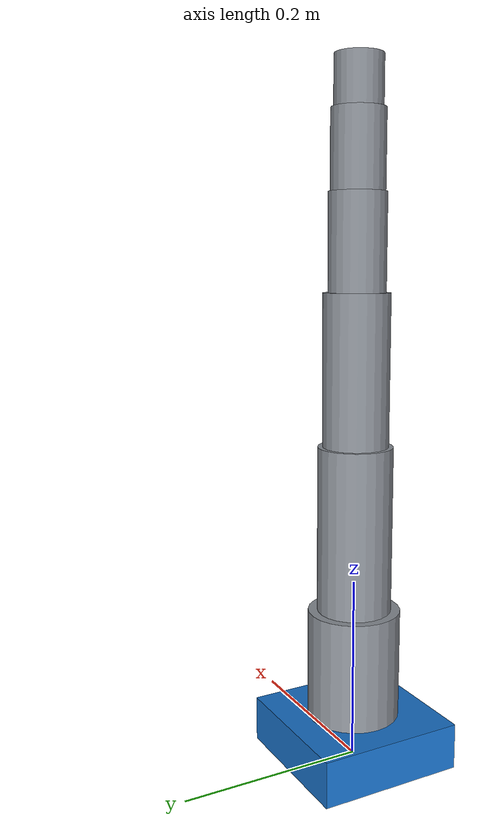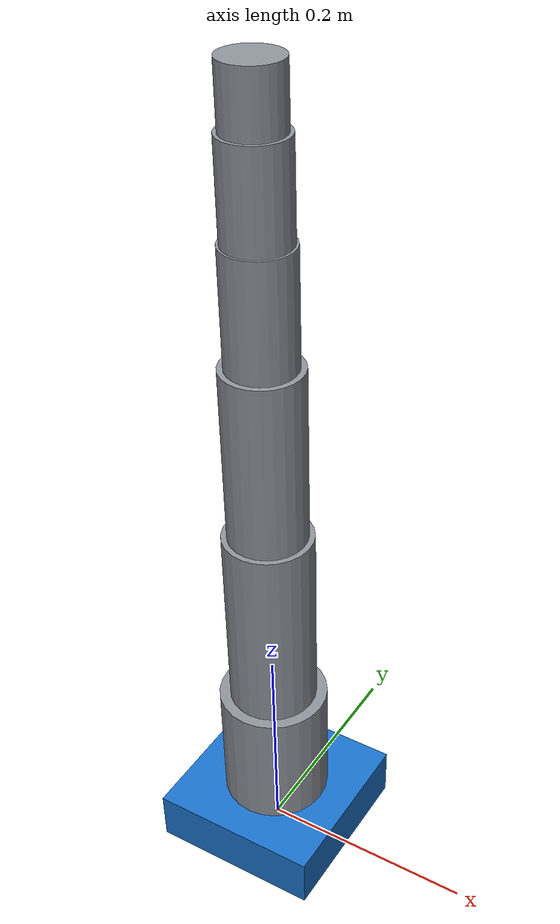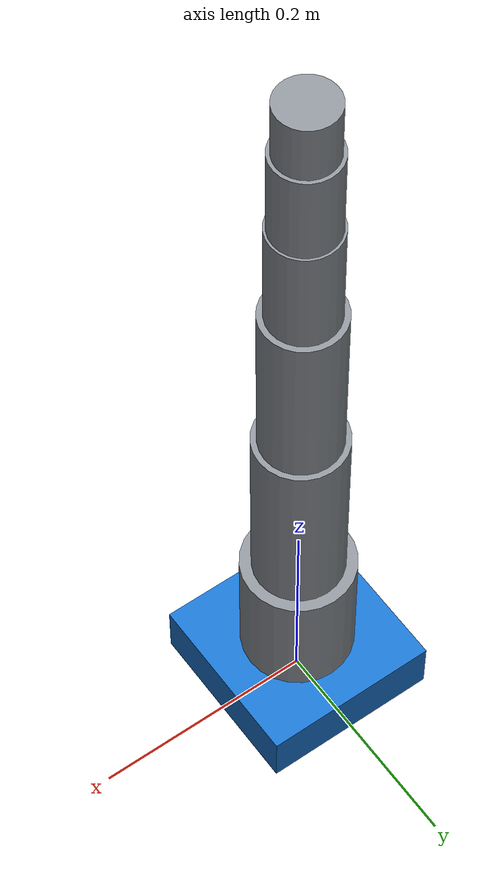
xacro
<?xml version="1.0"?>
<robot name="arctos" xmlns:xacro="http://www.ros.org/wiki/xacro">

  <xacro:arg name="prefix" default=""/>
  <xacro:arg name="use_mock_components" default="true"/>
  <xacro:arg name="can_backend" default="mock"/>
  <xacro:arg name="config_path" default=""/>
  <xacro:arg name="joints_file"
             default="$(find arctos_description)/config/arctos_joints.yaml"/>

  <xacro:include filename="$(find arctos_description)/urdf/arctos_macro.xacro"/>
  <xacro:include filename="$(find arctos_description)/urdf/arctos.ros2_control.xacro"/>

  <!-- Fixed world anchor so MoveIt has a stable planning frame. -->
  <link name="world"/>
  <joint name="world_to_base" type="fixed">
    <parent link="world"/>
    <child link="$(arg prefix)base_link"/>
    <origin xyz="0 0 0" rpy="0 0 0"/>
  </joint>

  <xacro:arctos_arm prefix="$(arg prefix)" joints_file="$(arg joints_file)"/>

  <xacro:arctos_ros2_control
    prefix="$(arg prefix)"
    joints_file="$(arg joints_file)"
    use_mock_components="$(arg use_mock_components)"
    can_backend="$(arg can_backend)"
    config_path="$(arg config_path)"/>

</robot>

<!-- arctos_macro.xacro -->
<robot xmlns:xacro="http://www.ros.org/wiki/xacro">

  <xacro:macro name="arctos_arm" params="prefix joints_file">

    <!-- Load the generated joint spec (radian limits + velocities). -->
    <xacro:property name="jspec" value="${xacro.load_yaml(joints_file)}"/>
    <xacro:property name="joints" value="${jspec['joints']}"/>

    <material name="arctos_grey">
      <color rgba="0.55 0.57 0.60 1.0"/>
    </material>
    <material name="arctos_accent">
      <color rgba="0.10 0.45 0.80 1.0"/>
    </material>

    <!-- A primitive cylindrical link of given length along +Z. -->
    <xacro:macro name="seg_link" params="name length radius:=0.04 material:=arctos_grey">
      <link name="${name}">
        <visual>
          <origin xyz="0 0 ${length/2}" rpy="0 0 0"/>
          <geometry><cylinder length="${length}" radius="${radius}"/></geometry>
          <material name="${material}"/>
        </visual>
        <collision>
          <origin xyz="0 0 ${length/2}" rpy="0 0 0"/>
          <geometry><cylinder length="${length}" radius="${radius}"/></geometry>
        </collision>
        <inertial>
          <origin xyz="0 0 ${length/2}" rpy="0 0 0"/>
          <mass value="0.5"/>
          <inertia ixx="0.001" ixy="0" ixz="0" iyy="0.001" iyz="0" izz="0.001"/>
        </inertial>
      </link>
    </xacro:macro>

    <!-- A revolute joint whose limits are read from the generated spec. -->
    <xacro:macro name="rev_joint" params="name parent child axis_xyz origin_xyz">
      <joint name="${prefix}${name}" type="revolute">
        <parent link="${parent}"/>
        <child link="${child}"/>
        <origin xyz="${origin_xyz}" rpy="0 0 0"/>
        <axis xyz="${axis_xyz}"/>
        <limit
          lower="${joints[name]['lower']}"
          upper="${joints[name]['upper']}"
          velocity="${joints[name]['velocity']}"
          effort="${joints[name]['effort']}"/>
      </joint>
    </xacro:macro>

    <!-- World-anchored base. -->
    <link name="${prefix}base_link">
      <visual>
        <origin xyz="0 0 0.025" rpy="0 0 0"/>
        <geometry><box size="0.16 0.16 0.05"/></geometry>
        <material name="arctos_accent"/>
      </visual>
      <collision>
        <origin xyz="0 0 0.025" rpy="0 0 0"/>
        <geometry><box size="0.16 0.16 0.05"/></geometry>
      </collision>
      <inertial>
        <mass value="1.0"/>
        <inertia ixx="0.005" ixy="0" ixz="0" iyy="0.005" iyz="0" izz="0.005"/>
      </inertial>
    </link>

    <!-- Links (approximate lengths, metres). -->
    <xacro:seg_link name="${prefix}link1" length="0.12" radius="0.05"/>
    <xacro:seg_link name="${prefix}link2" length="0.18" radius="0.04"/>
    <xacro:seg_link name="${prefix}link3" length="0.16" radius="0.035"/>
    <xacro:seg_link name="${prefix}link4" length="0.10" radius="0.03"/>
    <xacro:seg_link name="${prefix}link5" length="0.08" radius="0.028"/>
    <xacro:seg_link name="${prefix}link6" length="0.05" radius="0.025"/>

    <!-- Tool flange. -->
    <link name="${prefix}tool0"/>

    <!-- Serial chain. Axes: J1 base yaw (Z), J2/J3 pitch (Y),
         J4 roll (Z), J5 pitch (Y), J6 roll (Z). -->
    <xacro:rev_joint name="J1" parent="${prefix}base_link" child="${prefix}link1"
                     axis_xyz="0 0 1" origin_xyz="0 0 0.05"/>
    <xacro:rev_joint name="J2" parent="${prefix}link1" child="${prefix}link2"
                     axis_xyz="0 1 0" origin_xyz="0 0 0.12"/>
    <xacro:rev_joint name="J3" parent="${prefix}link2" child="${prefix}link3"
                     axis_xyz="0 1 0" origin_xyz="0 0 0.18"/>
    <xacro:rev_joint name="J4" parent="${prefix}link3" child="${prefix}link4"
                     axis_xyz="0 0 1" origin_xyz="0 0 0.16"/>
    <xacro:rev_joint name="J5" parent="${prefix}link4" child="${prefix}link5"
                     axis_xyz="0 1 0" origin_xyz="0 0 0.10"/>
    <xacro:rev_joint name="J6" parent="${prefix}link5" child="${prefix}link6"
                     axis_xyz="0 0 1" origin_xyz="0 0 0.08"/>

    <joint name="${prefix}tool0_fixed" type="fixed">
      <parent link="${prefix}link6"/>
      <child link="${prefix}tool0"/>
      <origin xyz="0 0 0.05" rpy="0 0 0"/>
    </joint>

  </xacro:macro>
</robot>
